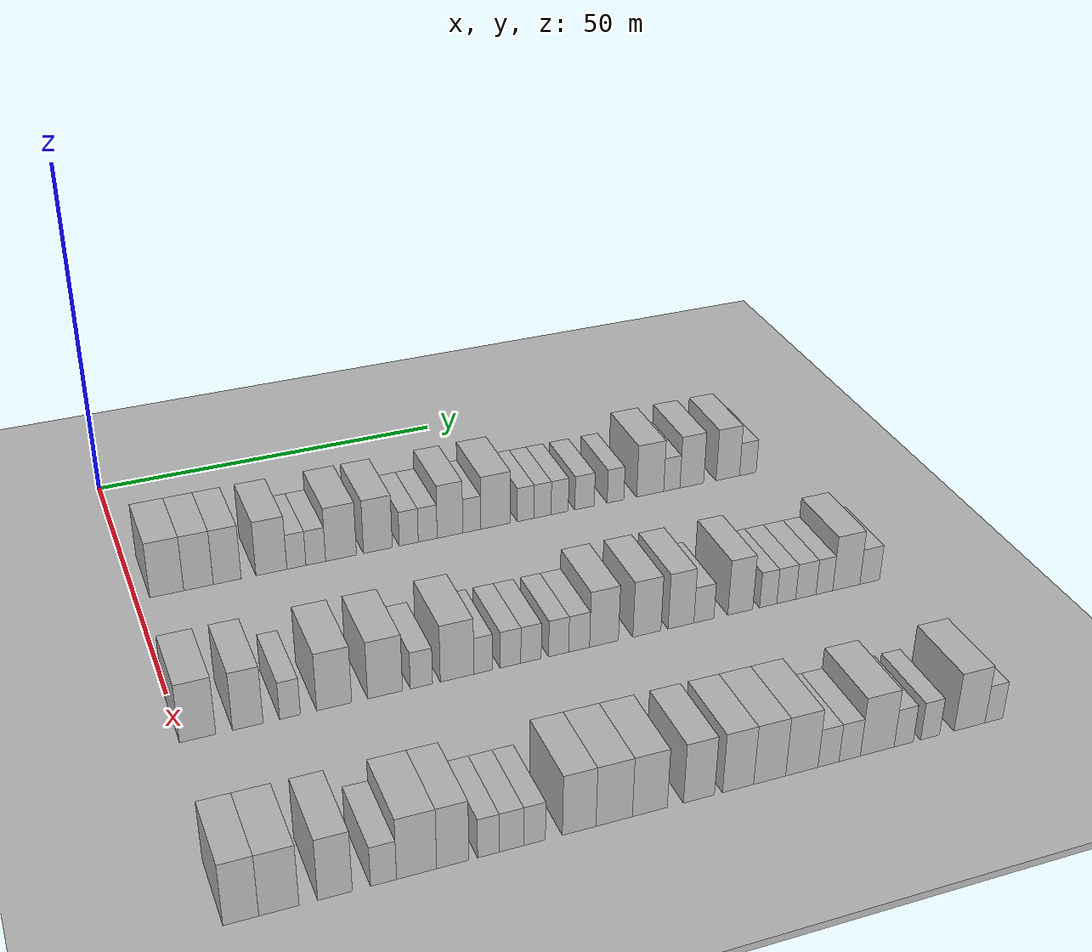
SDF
<sdf version="1.6">
 <world name="default">
  <include><name>ground_plane_1</name><uri>model://HANNAS_ground_plane</uri></include>
  <include>
   <name>ground_plane_2</name>
   <uri>model://HANNAS_ground_plane</uri>
   <pose>100 0 0  0 0 0</pose>
  </include>
  <model name="building_70">
   <static>1</static>
   <pose>25.0000 4.0350 0 0.000000 0.000000 0.000000</pose>
   <link name="link">
    <pose>0 0 4.50 0 0 0</pose>
    <collision name="collision"><geometry><box><size>10.0000 4.4987 9.0000</size></box></geometry></collision>
    <visual name="visual">
     <cast_shadows>0</cast_shadows>
     <geometry><box><size>10.0000 4.4987 9.0000</size></box></geometry>
     <material>
      <script>
       <uri>model://HANNAS_wall/materials/scripts</uri>
       <uri>model://HANNAS_wall/materials/textures</uri>
       <name>vrc/HANNAS_wall</name>
      </script>
     </material>
    </visual>
   </link>
  </model>
  <model name="building_71">
   <static>1</static>
   <pose>25.0000 8.2662 0 0.000000 0.000000 0.000000</pose>
   <link name="link">
    <pose>0 0 4.50 0 0 0</pose>
    <collision name="collision"><geometry><box><size>10.0000 3.9638 9.0000</size></box></geometry></collision>
    <visual name="visual">
     <cast_shadows>0</cast_shadows>
     <geometry><box><size>10.0000 3.9638 9.0000</size></box></geometry>
     <material>
      <script>
       <uri>model://HANNAS_wall/materials/scripts</uri>
       <uri>model://HANNAS_wall/materials/textures</uri>
       <name>vrc/HANNAS_wall</name>
      </script>
     </material>
    </visual>
   </link>
  </model>
  <model name="building_72">
   <static>1</static>
   <pose>25.0000 12.1309 0 0.000000 0.000000 0.000000</pose>
   <link name="link">
    <pose>0 0 4.50 0 0 0</pose>
    <collision name="collision"><geometry><box><size>10.0000 3.7655 9.0000</size></box></geometry></collision>
    <visual name="visual">
     <cast_shadows>0</cast_shadows>
     <geometry><box><size>10.0000 3.7655 9.0000</size></box></geometry>
     <material>
      <script>
       <uri>model://HANNAS_wall/materials/scripts</uri>
       <uri>model://HANNAS_wall/materials/textures</uri>
       <name>vrc/HANNAS_wall</name>
      </script>
     </material>
    </visual>
   </link>
  </model>
  <model name="building_73">
   <static>1</static>
   <pose>25.0000 18.1365 0 0.000000 0.000000 0.000000</pose>
   <link name="link">
    <pose>0 0 4.50 0 0 0</pose>
    <collision name="collision"><geometry><box><size>10.0000 4.2457 9.0000</size></box></geometry></collision>
    <visual name="visual">
     <cast_shadows>0</cast_shadows>
     <geometry><box><size>10.0000 4.2457 9.0000</size></box></geometry>
     <material>
      <script>
       <uri>model://HANNAS_wall/materials/scripts</uri>
       <uri>model://HANNAS_wall/materials/textures</uri>
       <name>vrc/HANNAS_wall</name>
      </script>
     </material>
    </visual>
   </link>
  </model>
  <model name="building_74">
   <static>1</static>
   <pose>25.0000 21.5769 0 0.000000 0.000000 0.000000</pose>
   <link name="link">
    <pose>0 0 3.00 0 0 0</pose>
    <collision name="collision"><geometry><box><size>10.0000 2.6351 6.0000</size></box></geometry></collision>
    <visual name="visual">
     <cast_shadows>0</cast_shadows>
     <geometry><box><size>10.0000 2.6351 6.0000</size></box></geometry>
     <material>
      <script>
       <uri>model://HANNAS_wall/materials/scripts</uri>
       <uri>model://HANNAS_wall/materials/textures</uri>
       <name>vrc/HANNAS_wall</name>
      </script>
     </material>
    </visual>
   </link>
  </model>
  <model name="building_75">
   <static>1</static>
   <pose>25.0000 24.2652 0 0.000000 0.000000 0.000000</pose>
   <link name="link">
    <pose>0 0 3.00 0 0 0</pose>
    <collision name="collision"><geometry><box><size>10.0000 2.7416 6.0000</size></box></geometry></collision>
    <visual name="visual">
     <cast_shadows>0</cast_shadows>
     <geometry><box><size>10.0000 2.7416 6.0000</size></box></geometry>
     <material>
      <script>
       <uri>model://HANNAS_wall/materials/scripts</uri>
       <uri>model://HANNAS_wall/materials/textures</uri>
       <name>vrc/HANNAS_wall</name>
      </script>
     </material>
    </visual>
   </link>
  </model>
  <model name="building_76">
   <static>1</static>
   <pose>25.0000 27.8010 0 0.000000 0.000000 0.000000</pose>
   <link name="link">
    <pose>0 0 4.50 0 0 0</pose>
    <collision name="collision"><geometry><box><size>10.0000 4.3298 9.0000</size></box></geometry></collision>
    <visual name="visual">
     <cast_shadows>0</cast_shadows>
     <geometry><box><size>10.0000 4.3298 9.0000</size></box></geometry>
     <material>
      <script>
       <uri>model://HANNAS_wall/materials/scripts</uri>
       <uri>model://HANNAS_wall/materials/textures</uri>
       <name>vrc/HANNAS_wall</name>
      </script>
     </material>
    </visual>
   </link>
  </model>
  <model name="building_77">
   <static>1</static>
   <pose>25.0000 33.0204 0 0.000000 0.000000 0.000000</pose>
   <link name="link">
    <pose>0 0 4.50 0 0 0</pose>
    <collision name="collision"><geometry><box><size>10.0000 4.1091 9.0000</size></box></geometry></collision>
    <visual name="visual">
     <cast_shadows>0</cast_shadows>
     <geometry><box><size>10.0000 4.1091 9.0000</size></box></geometry>
     <material>
      <script>
       <uri>model://HANNAS_wall/materials/scripts</uri>
       <uri>model://HANNAS_wall/materials/textures</uri>
       <name>vrc/HANNAS_wall</name>
      </script>
     </material>
    </visual>
   </link>
  </model>
  <model name="building_78">
   <static>1</static>
   <pose>25.0000 37.4399 0 0.000000 0.000000 0.000000</pose>
   <link name="link">
    <pose>0 0 3.00 0 0 0</pose>
    <collision name="collision"><geometry><box><size>10.0000 2.7298 6.0000</size></box></geometry></collision>
    <visual name="visual">
     <cast_shadows>0</cast_shadows>
     <geometry><box><size>10.0000 2.7298 6.0000</size></box></geometry>
     <material>
      <script>
       <uri>model://HANNAS_wall/materials/scripts</uri>
       <uri>model://HANNAS_wall/materials/textures</uri>
       <name>vrc/HANNAS_wall</name>
      </script>
     </material>
    </visual>
   </link>
  </model>
  <model name="building_79">
   <static>1</static>
   <pose>25.0000 40.1762 0 0.000000 0.000000 0.000000</pose>
   <link name="link">
    <pose>0 0 3.00 0 0 0</pose>
    <collision name="collision"><geometry><box><size>10.0000 2.7427 6.0000</size></box></geometry></collision>
    <visual name="visual">
     <cast_shadows>0</cast_shadows>
     <geometry><box><size>10.0000 2.7427 6.0000</size></box></geometry>
     <material>
      <script>
       <uri>model://HANNAS_wall/materials/scripts</uri>
       <uri>model://HANNAS_wall/materials/textures</uri>
       <name>vrc/HANNAS_wall</name>
      </script>
     </material>
    </visual>
   </link>
  </model>
  <model name="building_80">
   <static>1</static>
   <pose>25.0000 43.4188 0 0.000000 0.000000 0.000000</pose>
   <link name="link">
    <pose>0 0 4.50 0 0 0</pose>
    <collision name="collision"><geometry><box><size>10.0000 3.7425 9.0000</size></box></geometry></collision>
    <visual name="visual">
     <cast_shadows>0</cast_shadows>
     <geometry><box><size>10.0000 3.7425 9.0000</size></box></geometry>
     <material>
      <script>
       <uri>model://HANNAS_wall/materials/scripts</uri>
       <uri>model://HANNAS_wall/materials/textures</uri>
       <name>vrc/HANNAS_wall</name>
      </script>
     </material>
    </visual>
   </link>
  </model>
  <model name="building_81">
   <static>1</static>
   <pose>25.0000 46.6033 0 0.000000 0.000000 0.000000</pose>
   <link name="link">
    <pose>0 0 3.00 0 0 0</pose>
    <collision name="collision"><geometry><box><size>10.0000 2.6266 6.0000</size></box></geometry></collision>
    <visual name="visual">
     <cast_shadows>0</cast_shadows>
     <geometry><box><size>10.0000 2.6266 6.0000</size></box></geometry>
     <material>
      <script>
       <uri>model://HANNAS_wall/materials/scripts</uri>
       <uri>model://HANNAS_wall/materials/textures</uri>
       <name>vrc/HANNAS_wall</name>
      </script>
     </material>
    </visual>
   </link>
  </model>
  <model name="building_82">
   <static>1</static>
   <pose>25.0000 50.1400 0 0.000000 0.000000 0.000000</pose>
   <link name="link">
    <pose>0 0 4.50 0 0 0</pose>
    <collision name="collision"><geometry><box><size>10.0000 4.4469 9.0000</size></box></geometry></collision>
    <visual name="visual">
     <cast_shadows>0</cast_shadows>
     <geometry><box><size>10.0000 4.4469 9.0000</size></box></geometry>
     <material>
      <script>
       <uri>model://HANNAS_wall/materials/scripts</uri>
       <uri>model://HANNAS_wall/materials/textures</uri>
       <name>vrc/HANNAS_wall</name>
      </script>
     </material>
    </visual>
   </link>
  </model>
  <model name="building_83">
   <static>1</static>
   <pose>25.0000 54.6249 0 0.000000 0.000000 0.000000</pose>
   <link name="link">
    <pose>0 0 3.00 0 0 0</pose>
    <collision name="collision"><geometry><box><size>10.0000 2.5229 6.0000</size></box></geometry></collision>
    <visual name="visual">
     <cast_shadows>0</cast_shadows>
     <geometry><box><size>10.0000 2.5229 6.0000</size></box></geometry>
     <material>
      <script>
       <uri>model://HANNAS_wall/materials/scripts</uri>
       <uri>model://HANNAS_wall/materials/textures</uri>
       <name>vrc/HANNAS_wall</name>
      </script>
     </material>
    </visual>
   </link>
  </model>
  <model name="building_84">
   <static>1</static>
   <pose>25.0000 57.1756 0 0.000000 0.000000 0.000000</pose>
   <link name="link">
    <pose>0 0 3.00 0 0 0</pose>
    <collision name="collision"><geometry><box><size>10.0000 2.5785 6.0000</size></box></geometry></collision>
    <visual name="visual">
     <cast_shadows>0</cast_shadows>
     <geometry><box><size>10.0000 2.5785 6.0000</size></box></geometry>
     <material>
      <script>
       <uri>model://HANNAS_wall/materials/scripts</uri>
       <uri>model://HANNAS_wall/materials/textures</uri>
       <name>vrc/HANNAS_wall</name>
      </script>
     </material>
    </visual>
   </link>
  </model>
  <model name="building_85">
   <static>1</static>
   <pose>25.0000 59.7644 0 0.000000 0.000000 0.000000</pose>
   <link name="link">
    <pose>0 0 3.00 0 0 0</pose>
    <collision name="collision"><geometry><box><size>10.0000 2.5990 6.0000</size></box></geometry></collision>
    <visual name="visual">
     <cast_shadows>0</cast_shadows>
     <geometry><box><size>10.0000 2.5990 6.0000</size></box></geometry>
     <material>
      <script>
       <uri>model://HANNAS_wall/materials/scripts</uri>
       <uri>model://HANNAS_wall/materials/textures</uri>
       <name>vrc/HANNAS_wall</name>
      </script>
     </material>
    </visual>
   </link>
  </model>
  <model name="building_86">
   <static>1</static>
   <pose>25.0000 63.5575 0 0.000000 0.000000 0.000000</pose>
   <link name="link">
    <pose>0 0 3.00 0 0 0</pose>
    <collision name="collision"><geometry><box><size>10.0000 2.9873 6.0000</size></box></geometry></collision>
    <visual name="visual">
     <cast_shadows>0</cast_shadows>
     <geometry><box><size>10.0000 2.9873 6.0000</size></box></geometry>
     <material>
      <script>
       <uri>model://HANNAS_wall/materials/scripts</uri>
       <uri>model://HANNAS_wall/materials/textures</uri>
       <name>vrc/HANNAS_wall</name>
      </script>
     </material>
    </visual>
   </link>
  </model>
  <model name="building_87">
   <static>1</static>
   <pose>25.0000 68.3396 0 0.000000 0.000000 0.000000</pose>
   <link name="link">
    <pose>0 0 3.00 0 0 0</pose>
    <collision name="collision"><geometry><box><size>10.0000 2.5769 6.0000</size></box></geometry></collision>
    <visual name="visual">
     <cast_shadows>0</cast_shadows>
     <geometry><box><size>10.0000 2.5769 6.0000</size></box></geometry>
     <material>
      <script>
       <uri>model://HANNAS_wall/materials/scripts</uri>
       <uri>model://HANNAS_wall/materials/textures</uri>
       <name>vrc/HANNAS_wall</name>
      </script>
     </material>
    </visual>
   </link>
  </model>
  <model name="building_88">
   <static>1</static>
   <pose>25.0000 73.7526 0 0.000000 0.000000 0.000000</pose>
   <link name="link">
    <pose>0 0 4.50 0 0 0</pose>
    <collision name="collision"><geometry><box><size>10.0000 4.2490 9.0000</size></box></geometry></collision>
    <visual name="visual">
     <cast_shadows>0</cast_shadows>
     <geometry><box><size>10.0000 4.2490 9.0000</size></box></geometry>
     <material>
      <script>
       <uri>model://HANNAS_wall/materials/scripts</uri>
       <uri>model://HANNAS_wall/materials/textures</uri>
       <name>vrc/HANNAS_wall</name>
      </script>
     </material>
    </visual>
   </link>
  </model>
  <model name="building_89">
   <static>1</static>
   <pose>25.0000 77.1612 0 0.000000 0.000000 0.000000</pose>
   <link name="link">
    <pose>0 0 3.00 0 0 0</pose>
    <collision name="collision"><geometry><box><size>10.0000 2.5682 6.0000</size></box></geometry></collision>
    <visual name="visual">
     <cast_shadows>0</cast_shadows>
     <geometry><box><size>10.0000 2.5682 6.0000</size></box></geometry>
     <material>
      <script>
       <uri>model://HANNAS_wall/materials/scripts</uri>
       <uri>model://HANNAS_wall/materials/textures</uri>
       <name>vrc/HANNAS_wall</name>
      </script>
     </material>
    </visual>
   </link>
  </model>
  <model name="building_90">
   <static>1</static>
   <pose>25.0000 80.3404 0 0.000000 0.000000 0.000000</pose>
   <link name="link">
    <pose>0 0 4.50 0 0 0</pose>
    <collision name="collision"><geometry><box><size>10.0000 3.7902 9.0000</size></box></geometry></collision>
    <visual name="visual">
     <cast_shadows>0</cast_shadows>
     <geometry><box><size>10.0000 3.7902 9.0000</size></box></geometry>
     <material>
      <script>
       <uri>model://HANNAS_wall/materials/scripts</uri>
       <uri>model://HANNAS_wall/materials/textures</uri>
       <name>vrc/HANNAS_wall</name>
      </script>
     </material>
    </visual>
   </link>
  </model>
  <model name="building_91">
   <static>1</static>
   <pose>25.0000 86.1364 0 0.000000 0.000000 0.000000</pose>
   <link name="link">
    <pose>0 0 4.50 0 0 0</pose>
    <collision name="collision"><geometry><box><size>10.0000 3.8019 9.0000</size></box></geometry></collision>
    <visual name="visual">
     <cast_shadows>0</cast_shadows>
     <geometry><box><size>10.0000 3.8019 9.0000</size></box></geometry>
     <material>
      <script>
       <uri>model://HANNAS_wall/materials/scripts</uri>
       <uri>model://HANNAS_wall/materials/textures</uri>
       <name>vrc/HANNAS_wall</name>
      </script>
     </material>
    </visual>
   </link>
  </model>
  <model name="building_92">
   <static>1</static>
   <pose>25.0000 89.3959 0 0.000000 0.000000 0.000000</pose>
   <link name="link">
    <pose>0 0 3.00 0 0 0</pose>
    <collision name="collision"><geometry><box><size>10.0000 2.7170 6.0000</size></box></geometry></collision>
    <visual name="visual">
     <cast_shadows>0</cast_shadows>
     <geometry><box><size>10.0000 2.7170 6.0000</size></box></geometry>
     <material>
      <script>
       <uri>model://HANNAS_wall/materials/scripts</uri>
       <uri>model://HANNAS_wall/materials/textures</uri>
       <name>vrc/HANNAS_wall</name>
      </script>
     </material>
    </visual>
   </link>
  </model>
  <model name="building_206">
   <static>1</static>
   <pose>55.0000 1.8018 0 0.000000 0.000000 0.000000</pose>
   <link name="link">
    <pose>0 0 4.50 0 0 0</pose>
    <collision name="collision"><geometry><box><size>10.0000 4.3302 9.0000</size></box></geometry></collision>
    <visual name="visual">
     <cast_shadows>0</cast_shadows>
     <geometry><box><size>10.0000 4.3302 9.0000</size></box></geometry>
     <material>
      <script>
       <uri>model://HANNAS_wall/materials/scripts</uri>
       <uri>model://HANNAS_wall/materials/textures</uri>
       <name>vrc/HANNAS_wall</name>
      </script>
     </material>
    </visual>
   </link>
  </model>
  <model name="building_207">
   <static>1</static>
   <pose>55.0000 7.8236 0 0.000000 0.000000 0.000000</pose>
   <link name="link">
    <pose>0 0 4.50 0 0 0</pose>
    <collision name="collision"><geometry><box><size>10.0000 3.7133 9.0000</size></box></geometry></collision>
    <visual name="visual">
     <cast_shadows>0</cast_shadows>
     <geometry><box><size>10.0000 3.7133 9.0000</size></box></geometry>
     <material>
      <script>
       <uri>model://HANNAS_wall/materials/scripts</uri>
       <uri>model://HANNAS_wall/materials/textures</uri>
       <name>vrc/HANNAS_wall</name>
      </script>
     </material>
    </visual>
   </link>
  </model>
  <model name="building_208">
   <static>1</static>
   <pose>55.0000 12.9559 0 0.000000 0.000000 0.000000</pose>
   <link name="link">
    <pose>0 0 3.00 0 0 0</pose>
    <collision name="collision"><geometry><box><size>10.0000 2.5514 6.0000</size></box></geometry></collision>
    <visual name="visual">
     <cast_shadows>0</cast_shadows>
     <geometry><box><size>10.0000 2.5514 6.0000</size></box></geometry>
     <material>
      <script>
       <uri>model://HANNAS_wall/materials/scripts</uri>
       <uri>model://HANNAS_wall/materials/textures</uri>
       <name>vrc/HANNAS_wall</name>
      </script>
     </material>
    </visual>
   </link>
  </model>
  <model name="building_209">
   <static>1</static>
   <pose>55.0000 18.4198 0 0.000000 0.000000 0.000000</pose>
   <link name="link">
    <pose>0 0 4.50 0 0 0</pose>
    <collision name="collision"><geometry><box><size>10.0000 4.3764 9.0000</size></box></geometry></collision>
    <visual name="visual">
     <cast_shadows>0</cast_shadows>
     <geometry><box><size>10.0000 4.3764 9.0000</size></box></geometry>
     <material>
      <script>
       <uri>model://HANNAS_wall/materials/scripts</uri>
       <uri>model://HANNAS_wall/materials/textures</uri>
       <name>vrc/HANNAS_wall</name>
      </script>
     </material>
    </visual>
   </link>
  </model>
  <model name="building_210">
   <static>1</static>
   <pose>55.0000 24.8218 0 0.000000 0.000000 0.000000</pose>
   <link name="link">
    <pose>0 0 4.50 0 0 0</pose>
    <collision name="collision"><geometry><box><size>10.0000 4.4276 9.0000</size></box></geometry></collision>
    <visual name="visual">
     <cast_shadows>0</cast_shadows>
     <geometry><box><size>10.0000 4.4276 9.0000</size></box></geometry>
     <material>
      <script>
       <uri>model://HANNAS_wall/materials/scripts</uri>
       <uri>model://HANNAS_wall/materials/textures</uri>
       <name>vrc/HANNAS_wall</name>
      </script>
     </material>
    </visual>
   </link>
  </model>
  <model name="building_211">
   <static>1</static>
   <pose>55.0000 29.4629 0 0.000000 0.000000 0.000000</pose>
   <link name="link">
    <pose>0 0 3.00 0 0 0</pose>
    <collision name="collision"><geometry><box><size>10.0000 2.8546 6.0000</size></box></geometry></collision>
    <visual name="visual">
     <cast_shadows>0</cast_shadows>
     <geometry><box><size>10.0000 2.8546 6.0000</size></box></geometry>
     <material>
      <script>
       <uri>model://HANNAS_wall/materials/scripts</uri>
       <uri>model://HANNAS_wall/materials/textures</uri>
       <name>vrc/HANNAS_wall</name>
      </script>
     </material>
    </visual>
   </link>
  </model>
  <model name="building_212">
   <static>1</static>
   <pose>55.0000 34.0724 0 0.000000 0.000000 0.000000</pose>
   <link name="link">
    <pose>0 0 4.50 0 0 0</pose>
    <collision name="collision"><geometry><box><size>10.0000 4.3645 9.0000</size></box></geometry></collision>
    <visual name="visual">
     <cast_shadows>0</cast_shadows>
     <geometry><box><size>10.0000 4.3645 9.0000</size></box></geometry>
     <material>
      <script>
       <uri>model://HANNAS_wall/materials/scripts</uri>
       <uri>model://HANNAS_wall/materials/textures</uri>
       <name>vrc/HANNAS_wall</name>
      </script>
     </material>
    </visual>
   </link>
  </model>
  <model name="building_213">
   <static>1</static>
   <pose>55.0000 37.4864 0 0.000000 0.000000 0.000000</pose>
   <link name="link">
    <pose>0 0 3.00 0 0 0</pose>
    <collision name="collision"><geometry><box><size>10.0000 2.4635 6.0000</size></box></geometry></collision>
    <visual name="visual">
     <cast_shadows>0</cast_shadows>
     <geometry><box><size>10.0000 2.4635 6.0000</size></box></geometry>
     <material>
      <script>
       <uri>model://HANNAS_wall/materials/scripts</uri>
       <uri>model://HANNAS_wall/materials/textures</uri>
       <name>vrc/HANNAS_wall</name>
      </script>
     </material>
    </visual>
   </link>
  </model>
  <model name="building_214">
   <static>1</static>
   <pose>55.0000 41.0894 0 0.000000 0.000000 0.000000</pose>
   <link name="link">
    <pose>0 0 3.00 0 0 0</pose>
    <collision name="collision"><geometry><box><size>10.0000 2.7425 6.0000</size></box></geometry></collision>
    <visual name="visual">
     <cast_shadows>0</cast_shadows>
     <geometry><box><size>10.0000 2.7425 6.0000</size></box></geometry>
     <material>
      <script>
       <uri>model://HANNAS_wall/materials/scripts</uri>
       <uri>model://HANNAS_wall/materials/textures</uri>
       <name>vrc/HANNAS_wall</name>
      </script>
     </material>
    </visual>
   </link>
  </model>
  <model name="building_215">
   <static>1</static>
   <pose>55.0000 43.8221 0 0.000000 0.000000 0.000000</pose>
   <link name="link">
    <pose>0 0 3.00 0 0 0</pose>
    <collision name="collision"><geometry><box><size>10.0000 2.7228 6.0000</size></box></geometry></collision>
    <visual name="visual">
     <cast_shadows>0</cast_shadows>
     <geometry><box><size>10.0000 2.7228 6.0000</size></box></geometry>
     <material>
      <script>
       <uri>model://HANNAS_wall/materials/scripts</uri>
       <uri>model://HANNAS_wall/materials/textures</uri>
       <name>vrc/HANNAS_wall</name>
      </script>
     </material>
    </visual>
   </link>
  </model>
  <model name="building_216">
   <static>1</static>
   <pose>55.0000 47.5377 0 0.000000 0.000000 0.000000</pose>
   <link name="link">
    <pose>0 0 3.00 0 0 0</pose>
    <collision name="collision"><geometry><box><size>10.0000 2.7083 6.0000</size></box></geometry></collision>
    <visual name="visual">
     <cast_shadows>0</cast_shadows>
     <geometry><box><size>10.0000 2.7083 6.0000</size></box></geometry>
     <material>
      <script>
       <uri>model://HANNAS_wall/materials/scripts</uri>
       <uri>model://HANNAS_wall/materials/textures</uri>
       <name>vrc/HANNAS_wall</name>
      </script>
     </material>
    </visual>
   </link>
  </model>
  <model name="building_217">
   <static>1</static>
   <pose>55.0000 50.3135 0 0.000000 0.000000 0.000000</pose>
   <link name="link">
    <pose>0 0 3.00 0 0 0</pose>
    <collision name="collision"><geometry><box><size>10.0000 2.8434 6.0000</size></box></geometry></collision>
    <visual name="visual">
     <cast_shadows>0</cast_shadows>
     <geometry><box><size>10.0000 2.8434 6.0000</size></box></geometry>
     <material>
      <script>
       <uri>model://HANNAS_wall/materials/scripts</uri>
       <uri>model://HANNAS_wall/materials/textures</uri>
       <name>vrc/HANNAS_wall</name>
      </script>
     </material>
    </visual>
   </link>
  </model>
  <model name="building_218">
   <static>1</static>
   <pose>55.0000 53.7139 0 0.000000 0.000000 0.000000</pose>
   <link name="link">
    <pose>0 0 4.50 0 0 0</pose>
    <collision name="collision"><geometry><box><size>10.0000 3.9573 9.0000</size></box></geometry></collision>
    <visual name="visual">
     <cast_shadows>0</cast_shadows>
     <geometry><box><size>10.0000 3.9573 9.0000</size></box></geometry>
     <material>
      <script>
       <uri>model://HANNAS_wall/materials/scripts</uri>
       <uri>model://HANNAS_wall/materials/textures</uri>
       <name>vrc/HANNAS_wall</name>
      </script>
     </material>
    </visual>
   </link>
  </model>
  <model name="building_219">
   <static>1</static>
   <pose>55.0000 59.6506 0 0.000000 0.000000 0.000000</pose>
   <link name="link">
    <pose>0 0 4.50 0 0 0</pose>
    <collision name="collision"><geometry><box><size>10.0000 3.9161 9.0000</size></box></geometry></collision>
    <visual name="visual">
     <cast_shadows>0</cast_shadows>
     <geometry><box><size>10.0000 3.9161 9.0000</size></box></geometry>
     <material>
      <script>
       <uri>model://HANNAS_wall/materials/scripts</uri>
       <uri>model://HANNAS_wall/materials/textures</uri>
       <name>vrc/HANNAS_wall</name>
      </script>
     </material>
    </visual>
   </link>
  </model>
  <model name="building_220">
   <static>1</static>
   <pose>55.0000 64.4339 0 0.000000 0.000000 0.000000</pose>
   <link name="link">
    <pose>0 0 4.50 0 0 0</pose>
    <collision name="collision"><geometry><box><size>10.0000 3.6504 9.0000</size></box></geometry></collision>
    <visual name="visual">
     <cast_shadows>0</cast_shadows>
     <geometry><box><size>10.0000 3.6504 9.0000</size></box></geometry>
     <material>
      <script>
       <uri>model://HANNAS_wall/materials/scripts</uri>
       <uri>model://HANNAS_wall/materials/textures</uri>
       <name>vrc/HANNAS_wall</name>
      </script>
     </material>
    </visual>
   </link>
  </model>
  <model name="building_221">
   <static>1</static>
   <pose>55.0000 67.6846 0 0.000000 0.000000 0.000000</pose>
   <link name="link">
    <pose>0 0 3.00 0 0 0</pose>
    <collision name="collision"><geometry><box><size>10.0000 2.8510 6.0000</size></box></geometry></collision>
    <visual name="visual">
     <cast_shadows>0</cast_shadows>
     <geometry><box><size>10.0000 2.8510 6.0000</size></box></geometry>
     <material>
      <script>
       <uri>model://HANNAS_wall/materials/scripts</uri>
       <uri>model://HANNAS_wall/materials/textures</uri>
       <name>vrc/HANNAS_wall</name>
      </script>
     </material>
    </visual>
   </link>
  </model>
  <model name="building_222">
   <static>1</static>
   <pose>55.0000 72.9111 0 0.000000 0.000000 0.000000</pose>
   <link name="link">
    <pose>0 0 4.50 0 0 0</pose>
    <collision name="collision"><geometry><box><size>10.0000 3.6020 9.0000</size></box></geometry></collision>
    <visual name="visual">
     <cast_shadows>0</cast_shadows>
     <geometry><box><size>10.0000 3.6020 9.0000</size></box></geometry>
     <material>
      <script>
       <uri>model://HANNAS_wall/materials/scripts</uri>
       <uri>model://HANNAS_wall/materials/textures</uri>
       <name>vrc/HANNAS_wall</name>
      </script>
     </material>
    </visual>
   </link>
  </model>
  <model name="building_223">
   <static>1</static>
   <pose>55.0000 76.9693 0 0.000000 0.000000 0.000000</pose>
   <link name="link">
    <pose>0 0 3.00 0 0 0</pose>
    <collision name="collision"><geometry><box><size>10.0000 2.5144 6.0000</size></box></geometry></collision>
    <visual name="visual">
     <cast_shadows>0</cast_shadows>
     <geometry><box><size>10.0000 2.5144 6.0000</size></box></geometry>
     <material>
      <script>
       <uri>model://HANNAS_wall/materials/scripts</uri>
       <uri>model://HANNAS_wall/materials/textures</uri>
       <name>vrc/HANNAS_wall</name>
      </script>
     </material>
    </visual>
   </link>
  </model>
  <model name="building_224">
   <static>1</static>
   <pose>55.0000 79.6221 0 0.000000 0.000000 0.000000</pose>
   <link name="link">
    <pose>0 0 3.00 0 0 0</pose>
    <collision name="collision"><geometry><box><size>10.0000 2.7912 6.0000</size></box></geometry></collision>
    <visual name="visual">
     <cast_shadows>0</cast_shadows>
     <geometry><box><size>10.0000 2.7912 6.0000</size></box></geometry>
     <material>
      <script>
       <uri>model://HANNAS_wall/materials/scripts</uri>
       <uri>model://HANNAS_wall/materials/textures</uri>
       <name>vrc/HANNAS_wall</name>
      </script>
     </material>
    </visual>
   </link>
  </model>
  <model name="building_225">
   <static>1</static>
   <pose>55.0000 82.5121 0 0.000000 0.000000 0.000000</pose>
   <link name="link">
    <pose>0 0 3.00 0 0 0</pose>
    <collision name="collision"><geometry><box><size>10.0000 2.9887 6.0000</size></box></geometry></collision>
    <visual name="visual">
     <cast_shadows>0</cast_shadows>
     <geometry><box><size>10.0000 2.9887 6.0000</size></box></geometry>
     <material>
      <script>
       <uri>model://HANNAS_wall/materials/scripts</uri>
       <uri>model://HANNAS_wall/materials/textures</uri>
       <name>vrc/HANNAS_wall</name>
      </script>
     </material>
    </visual>
   </link>
  </model>
  <model name="building_226">
   <static>1</static>
   <pose>55.0000 85.2598 0 0.000000 0.000000 0.000000</pose>
   <link name="link">
    <pose>0 0 3.00 0 0 0</pose>
    <collision name="collision"><geometry><box><size>10.0000 2.5068 6.0000</size></box></geometry></collision>
    <visual name="visual">
     <cast_shadows>0</cast_shadows>
     <geometry><box><size>10.0000 2.5068 6.0000</size></box></geometry>
     <material>
      <script>
       <uri>model://HANNAS_wall/materials/scripts</uri>
       <uri>model://HANNAS_wall/materials/textures</uri>
       <name>vrc/HANNAS_wall</name>
      </script>
     </material>
    </visual>
   </link>
  </model>
  <model name="building_227">
   <static>1</static>
   <pose>55.0000 88.5604 0 0.000000 0.000000 0.000000</pose>
   <link name="link">
    <pose>0 0 4.50 0 0 0</pose>
    <collision name="collision"><geometry><box><size>10.0000 4.0944 9.0000</size></box></geometry></collision>
    <visual name="visual">
     <cast_shadows>0</cast_shadows>
     <geometry><box><size>10.0000 4.0944 9.0000</size></box></geometry>
     <material>
      <script>
       <uri>model://HANNAS_wall/materials/scripts</uri>
       <uri>model://HANNAS_wall/materials/textures</uri>
       <name>vrc/HANNAS_wall</name>
      </script>
     </material>
    </visual>
   </link>
  </model>
  <model name="building_228">
   <static>1</static>
   <pose>55.0000 92.1011 0 0.000000 0.000000 0.000000</pose>
   <link name="link">
    <pose>0 0 3.00 0 0 0</pose>
    <collision name="collision"><geometry><box><size>10.0000 2.9869 6.0000</size></box></geometry></collision>
    <visual name="visual">
     <cast_shadows>0</cast_shadows>
     <geometry><box><size>10.0000 2.9869 6.0000</size></box></geometry>
     <material>
      <script>
       <uri>model://HANNAS_wall/materials/scripts</uri>
       <uri>model://HANNAS_wall/materials/textures</uri>
       <name>vrc/HANNAS_wall</name>
      </script>
     </material>
    </visual>
   </link>
  </model>
  <model name="building_341">
   <static>1</static>
   <pose>85.0000 -0.0187 0 0.000000 0.000000 0.000000</pose>
   <link name="link">
    <pose>0 0 4.50 0 0 0</pose>
    <collision name="collision"><geometry><box><size>10.0000 3.8009 9.0000</size></box></geometry></collision>
    <visual name="visual">
     <cast_shadows>0</cast_shadows>
     <geometry><box><size>10.0000 3.8009 9.0000</size></box></geometry>
     <material>
      <script>
       <uri>model://HANNAS_wall/materials/scripts</uri>
       <uri>model://HANNAS_wall/materials/textures</uri>
       <name>vrc/HANNAS_wall</name>
      </script>
     </material>
    </visual>
   </link>
  </model>
  <model name="building_342">
   <static>1</static>
   <pose>85.0000 4.0388 0 0.000000 0.000000 0.000000</pose>
   <link name="link">
    <pose>0 0 4.50 0 0 0</pose>
    <collision name="collision"><geometry><box><size>10.0000 4.3141 9.0000</size></box></geometry></collision>
    <visual name="visual">
     <cast_shadows>0</cast_shadows>
     <geometry><box><size>10.0000 4.3141 9.0000</size></box></geometry>
     <material>
      <script>
       <uri>model://HANNAS_wall/materials/scripts</uri>
       <uri>model://HANNAS_wall/materials/textures</uri>
       <name>vrc/HANNAS_wall</name>
      </script>
     </material>
    </visual>
   </link>
  </model>
  <model name="building_343">
   <static>1</static>
   <pose>85.0000 10.0875 0 0.000000 0.000000 0.000000</pose>
   <link name="link">
    <pose>0 0 4.50 0 0 0</pose>
    <collision name="collision"><geometry><box><size>10.0000 3.7833 9.0000</size></box></geometry></collision>
    <visual name="visual">
     <cast_shadows>0</cast_shadows>
     <geometry><box><size>10.0000 3.7833 9.0000</size></box></geometry>
     <material>
      <script>
       <uri>model://HANNAS_wall/materials/scripts</uri>
       <uri>model://HANNAS_wall/materials/textures</uri>
       <name>vrc/HANNAS_wall</name>
      </script>
     </material>
    </visual>
   </link>
  </model>
  <model name="building_344">
   <static>1</static>
   <pose>85.0000 15.4294 0 0.000000 0.000000 0.000000</pose>
   <link name="link">
    <pose>0 0 3.00 0 0 0</pose>
    <collision name="collision"><geometry><box><size>10.0000 2.9006 6.0000</size></box></geometry></collision>
    <visual name="visual">
     <cast_shadows>0</cast_shadows>
     <geometry><box><size>10.0000 2.9006 6.0000</size></box></geometry>
     <material>
      <script>
       <uri>model://HANNAS_wall/materials/scripts</uri>
       <uri>model://HANNAS_wall/materials/textures</uri>
       <name>vrc/HANNAS_wall</name>
      </script>
     </material>
    </visual>
   </link>
  </model>
  <model name="building_345">
   <static>1</static>
   <pose>85.0000 19.1281 0 0.000000 0.000000 0.000000</pose>
   <link name="link">
    <pose>0 0 4.50 0 0 0</pose>
    <collision name="collision"><geometry><box><size>10.0000 4.4969 9.0000</size></box></geometry></collision>
    <visual name="visual">
     <cast_shadows>0</cast_shadows>
     <geometry><box><size>10.0000 4.4969 9.0000</size></box></geometry>
     <material>
      <script>
       <uri>model://HANNAS_wall/materials/scripts</uri>
       <uri>model://HANNAS_wall/materials/textures</uri>
       <name>vrc/HANNAS_wall</name>
      </script>
     </material>
    </visual>
   </link>
  </model>
  <model name="building_346">
   <static>1</static>
   <pose>85.0000 23.2039 0 0.000000 0.000000 0.000000</pose>
   <link name="link">
    <pose>0 0 4.50 0 0 0</pose>
    <collision name="collision"><geometry><box><size>10.0000 3.6546 9.0000</size></box></geometry></collision>
    <visual name="visual">
     <cast_shadows>0</cast_shadows>
     <geometry><box><size>10.0000 3.6546 9.0000</size></box></geometry>
     <material>
      <script>
       <uri>model://HANNAS_wall/materials/scripts</uri>
       <uri>model://HANNAS_wall/materials/textures</uri>
       <name>vrc/HANNAS_wall</name>
      </script>
     </material>
    </visual>
   </link>
  </model>
  <model name="building_347">
   <static>1</static>
   <pose>85.0000 27.2859 0 0.000000 0.000000 0.000000</pose>
   <link name="link">
    <pose>0 0 3.00 0 0 0</pose>
    <collision name="collision"><geometry><box><size>10.0000 2.5093 6.0000</size></box></geometry></collision>
    <visual name="visual">
     <cast_shadows>0</cast_shadows>
     <geometry><box><size>10.0000 2.5093 6.0000</size></box></geometry>
     <material>
      <script>
       <uri>model://HANNAS_wall/materials/scripts</uri>
       <uri>model://HANNAS_wall/materials/textures</uri>
       <name>vrc/HANNAS_wall</name>
      </script>
     </material>
    </visual>
   </link>
  </model>
  <model name="building_348">
   <static>1</static>
   <pose>85.0000 29.9510 0 0.000000 0.000000 0.000000</pose>
   <link name="link">
    <pose>0 0 3.00 0 0 0</pose>
    <collision name="collision"><geometry><box><size>10.0000 2.8210 6.0000</size></box></geometry></collision>
    <visual name="visual">
     <cast_shadows>0</cast_shadows>
     <geometry><box><size>10.0000 2.8210 6.0000</size></box></geometry>
     <material>
      <script>
       <uri>model://HANNAS_wall/materials/scripts</uri>
       <uri>model://HANNAS_wall/materials/textures</uri>
       <name>vrc/HANNAS_wall</name>
      </script>
     </material>
    </visual>
   </link>
  </model>
  <model name="building_349">
   <static>1</static>
   <pose>85.0000 32.6314 0 0.000000 0.000000 0.000000</pose>
   <link name="link">
    <pose>0 0 3.00 0 0 0</pose>
    <collision name="collision"><geometry><box><size>10.0000 2.5399 6.0000</size></box></geometry></collision>
    <visual name="visual">
     <cast_shadows>0</cast_shadows>
     <geometry><box><size>10.0000 2.5399 6.0000</size></box></geometry>
     <material>
      <script>
       <uri>model://HANNAS_wall/materials/scripts</uri>
       <uri>model://HANNAS_wall/materials/textures</uri>
       <name>vrc/HANNAS_wall</name>
      </script>
     </material>
    </visual>
   </link>
  </model>
  <model name="building_350">
   <static>1</static>
   <pose>85.0000 37.8963 0 0.000000 0.000000 0.000000</pose>
   <link name="link">
    <pose>0 0 4.50 0 0 0</pose>
    <collision name="collision"><geometry><box><size>10.0000 3.9899 9.0000</size></box></geometry></collision>
    <visual name="visual">
     <cast_shadows>0</cast_shadows>
     <geometry><box><size>10.0000 3.9899 9.0000</size></box></geometry>
     <material>
      <script>
       <uri>model://HANNAS_wall/materials/scripts</uri>
       <uri>model://HANNAS_wall/materials/textures</uri>
       <name>vrc/HANNAS_wall</name>
      </script>
     </material>
    </visual>
   </link>
  </model>
  <model name="building_351">
   <static>1</static>
   <pose>85.0000 42.0889 0 0.000000 0.000000 0.000000</pose>
   <link name="link">
    <pose>0 0 4.50 0 0 0</pose>
    <collision name="collision"><geometry><box><size>10.0000 4.3954 9.0000</size></box></geometry></collision>
    <visual name="visual">
     <cast_shadows>0</cast_shadows>
     <geometry><box><size>10.0000 4.3954 9.0000</size></box></geometry>
     <material>
      <script>
       <uri>model://HANNAS_wall/materials/scripts</uri>
       <uri>model://HANNAS_wall/materials/textures</uri>
       <name>vrc/HANNAS_wall</name>
      </script>
     </material>
    </visual>
   </link>
  </model>
  <model name="building_352">
   <static>1</static>
   <pose>85.0000 46.4188 0 0.000000 0.000000 0.000000</pose>
   <link name="link">
    <pose>0 0 4.50 0 0 0</pose>
    <collision name="collision"><geometry><box><size>10.0000 4.2644 9.0000</size></box></geometry></collision>
    <visual name="visual">
     <cast_shadows>0</cast_shadows>
     <geometry><box><size>10.0000 4.2644 9.0000</size></box></geometry>
     <material>
      <script>
       <uri>model://HANNAS_wall/materials/scripts</uri>
       <uri>model://HANNAS_wall/materials/textures</uri>
       <name>vrc/HANNAS_wall</name>
      </script>
     </material>
    </visual>
   </link>
  </model>
  <model name="building_353">
   <static>1</static>
   <pose>85.0000 52.4821 0 0.000000 0.000000 0.000000</pose>
   <link name="link">
    <pose>0 0 4.50 0 0 0</pose>
    <collision name="collision"><geometry><box><size>10.0000 3.8622 9.0000</size></box></geometry></collision>
    <visual name="visual">
     <cast_shadows>0</cast_shadows>
     <geometry><box><size>10.0000 3.8622 9.0000</size></box></geometry>
     <material>
      <script>
       <uri>model://HANNAS_wall/materials/scripts</uri>
       <uri>model://HANNAS_wall/materials/textures</uri>
       <name>vrc/HANNAS_wall</name>
      </script>
     </material>
    </visual>
   </link>
  </model>
  <model name="building_354">
   <static>1</static>
   <pose>85.0000 57.3807 0 0.000000 0.000000 0.000000</pose>
   <link name="link">
    <pose>0 0 4.50 0 0 0</pose>
    <collision name="collision"><geometry><box><size>10.0000 3.9351 9.0000</size></box></geometry></collision>
    <visual name="visual">
     <cast_shadows>0</cast_shadows>
     <geometry><box><size>10.0000 3.9351 9.0000</size></box></geometry>
     <material>
      <script>
       <uri>model://HANNAS_wall/materials/scripts</uri>
       <uri>model://HANNAS_wall/materials/textures</uri>
       <name>vrc/HANNAS_wall</name>
      </script>
     </material>
    </visual>
   </link>
  </model>
  <model name="building_355">
   <static>1</static>
   <pose>85.0000 61.3976 0 0.000000 0.000000 0.000000</pose>
   <link name="link">
    <pose>0 0 4.50 0 0 0</pose>
    <collision name="collision"><geometry><box><size>10.0000 4.0988 9.0000</size></box></geometry></collision>
    <visual name="visual">
     <cast_shadows>0</cast_shadows>
     <geometry><box><size>10.0000 4.0988 9.0000</size></box></geometry>
     <material>
      <script>
       <uri>model://HANNAS_wall/materials/scripts</uri>
       <uri>model://HANNAS_wall/materials/textures</uri>
       <name>vrc/HANNAS_wall</name>
      </script>
     </material>
    </visual>
   </link>
  </model>
  <model name="building_356">
   <static>1</static>
   <pose>85.0000 65.5403 0 0.000000 0.000000 0.000000</pose>
   <link name="link">
    <pose>0 0 4.50 0 0 0</pose>
    <collision name="collision"><geometry><box><size>10.0000 4.1866 9.0000</size></box></geometry></collision>
    <visual name="visual">
     <cast_shadows>0</cast_shadows>
     <geometry><box><size>10.0000 4.1866 9.0000</size></box></geometry>
     <material>
      <script>
       <uri>model://HANNAS_wall/materials/scripts</uri>
       <uri>model://HANNAS_wall/materials/textures</uri>
       <name>vrc/HANNAS_wall</name>
      </script>
     </material>
    </visual>
   </link>
  </model>
  <model name="building_357">
   <static>1</static>
   <pose>85.0000 69.0096 0 0.000000 0.000000 0.000000</pose>
   <link name="link">
    <pose>0 0 3.00 0 0 0</pose>
    <collision name="collision"><geometry><box><size>10.0000 2.7519 6.0000</size></box></geometry></collision>
    <visual name="visual">
     <cast_shadows>0</cast_shadows>
     <geometry><box><size>10.0000 2.7519 6.0000</size></box></geometry>
     <material>
      <script>
       <uri>model://HANNAS_wall/materials/scripts</uri>
       <uri>model://HANNAS_wall/materials/textures</uri>
       <name>vrc/HANNAS_wall</name>
      </script>
     </material>
    </visual>
   </link>
  </model>
  <model name="building_358">
   <static>1</static>
   <pose>85.0000 71.7934 0 0.000000 0.000000 0.000000</pose>
   <link name="link">
    <pose>0 0 3.00 0 0 0</pose>
    <collision name="collision"><geometry><box><size>10.0000 2.8156 6.0000</size></box></geometry></collision>
    <visual name="visual">
     <cast_shadows>0</cast_shadows>
     <geometry><box><size>10.0000 2.8156 6.0000</size></box></geometry>
     <material>
      <script>
       <uri>model://HANNAS_wall/materials/scripts</uri>
       <uri>model://HANNAS_wall/materials/textures</uri>
       <name>vrc/HANNAS_wall</name>
      </script>
     </material>
    </visual>
   </link>
  </model>
  <model name="building_359">
   <static>1</static>
   <pose>85.0000 75.4455 0 0.000000 0.000000 0.000000</pose>
   <link name="link">
    <pose>0 0 4.50 0 0 0</pose>
    <collision name="collision"><geometry><box><size>10.0000 4.4886 9.0000</size></box></geometry></collision>
    <visual name="visual">
     <cast_shadows>0</cast_shadows>
     <geometry><box><size>10.0000 4.4886 9.0000</size></box></geometry>
     <material>
      <script>
       <uri>model://HANNAS_wall/materials/scripts</uri>
       <uri>model://HANNAS_wall/materials/textures</uri>
       <name>vrc/HANNAS_wall</name>
      </script>
     </material>
    </visual>
   </link>
  </model>
  <model name="building_360">
   <static>1</static>
   <pose>85.0000 78.9817 0 0.000000 0.000000 0.000000</pose>
   <link name="link">
    <pose>0 0 3.00 0 0 0</pose>
    <collision name="collision"><geometry><box><size>10.0000 2.5839 6.0000</size></box></geometry></collision>
    <visual name="visual">
     <cast_shadows>0</cast_shadows>
     <geometry><box><size>10.0000 2.5839 6.0000</size></box></geometry>
     <material>
      <script>
       <uri>model://HANNAS_wall/materials/scripts</uri>
       <uri>model://HANNAS_wall/materials/textures</uri>
       <name>vrc/HANNAS_wall</name>
      </script>
     </material>
    </visual>
   </link>
  </model>
  <model name="building_361">
   <static>1</static>
   <pose>85.0000 82.5571 0 0.000000 0.000000 0.000000</pose>
   <link name="link">
    <pose>0 0 3.00 0 0 0</pose>
    <collision name="collision"><geometry><box><size>10.0000 2.5668 6.0000</size></box></geometry></collision>
    <visual name="visual">
     <cast_shadows>0</cast_shadows>
     <geometry><box><size>10.0000 2.5668 6.0000</size></box></geometry>
     <material>
      <script>
       <uri>model://HANNAS_wall/materials/scripts</uri>
       <uri>model://HANNAS_wall/materials/textures</uri>
       <name>vrc/HANNAS_wall</name>
      </script>
     </material>
    </visual>
   </link>
  </model>
  <model name="building_362">
   <static>1</static>
   <pose>85.0000 87.9683 0 0.000000 0.000000 0.000000</pose>
   <link name="link">
    <pose>0 0 4.50 0 0 0</pose>
    <collision name="collision"><geometry><box><size>10.0000 4.2556 9.0000</size></box></geometry></collision>
    <visual name="visual">
     <cast_shadows>0</cast_shadows>
     <geometry><box><size>10.0000 4.2556 9.0000</size></box></geometry>
     <material>
      <script>
       <uri>model://HANNAS_wall/materials/scripts</uri>
       <uri>model://HANNAS_wall/materials/textures</uri>
       <name>vrc/HANNAS_wall</name>
      </script>
     </material>
    </visual>
   </link>
  </model>
  <model name="building_363">
   <static>1</static>
   <pose>85.0000 91.3337 0 0.000000 0.000000 0.000000</pose>
   <link name="link">
    <pose>0 0 3.00 0 0 0</pose>
    <collision name="collision"><geometry><box><size>10.0000 2.4752 6.0000</size></box></geometry></collision>
    <visual name="visual">
     <cast_shadows>0</cast_shadows>
     <geometry><box><size>10.0000 2.4752 6.0000</size></box></geometry>
     <material>
      <script>
       <uri>model://HANNAS_wall/materials/scripts</uri>
       <uri>model://HANNAS_wall/materials/textures</uri>
       <name>vrc/HANNAS_wall</name>
      </script>
     </material>
    </visual>
   </link>
  </model>
 </world>
</sdf>
